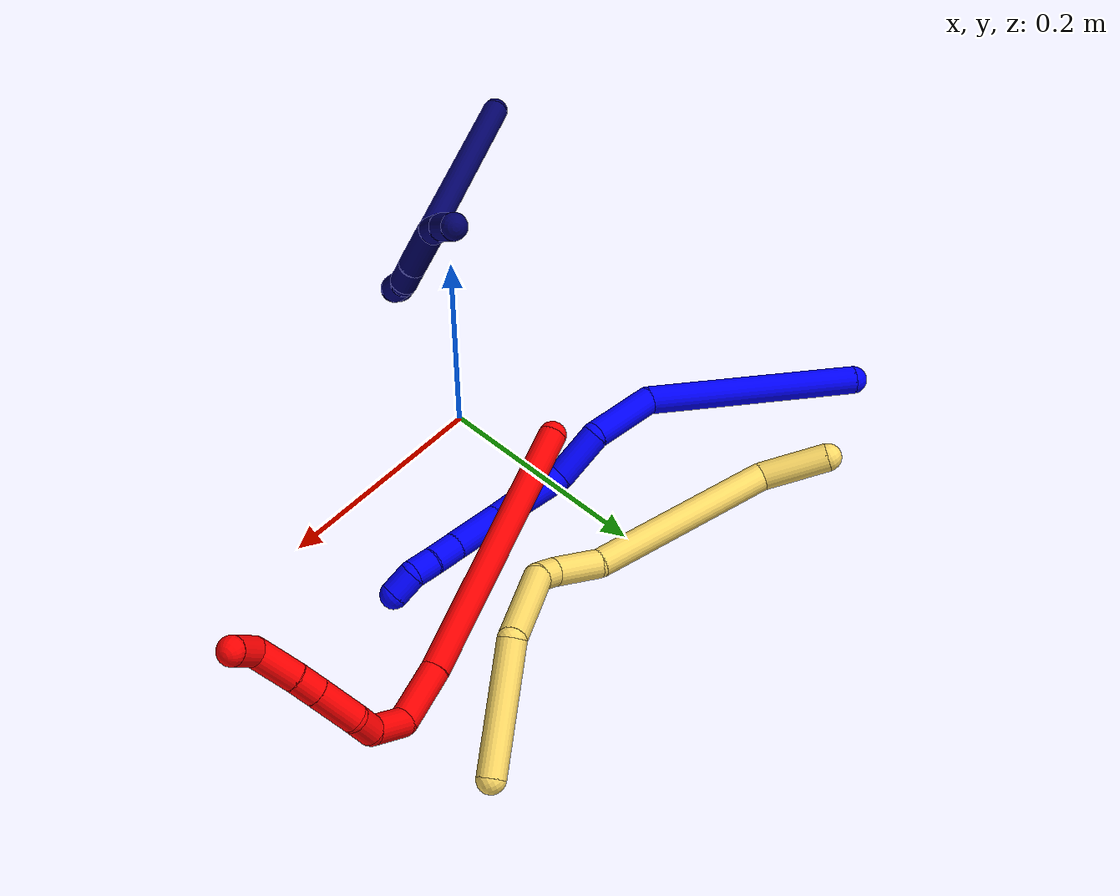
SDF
<sdf version="1.7">
 <world name="default">
  <model name="1">
   <static>0</static>
   <link name="1">
    <collision name="collision-cylinder-e_1_1_4">
     <pose>0.086271 0.005721 -0.043493 -3.0108 1.10039 -2.92885</pose>
     <geometry><cylinder><radius>0.0125</radius><length>0.193567</length></cylinder></geometry>
     <surface>
      <friction><ode><mu>1.16</mu><mu2>1.16</mu2><slip1>0</slip1><slip2>0</slip2></ode></friction>
      <contact><ode><kp>1e+06</kp><kd>1</kd><max_vel>0</max_vel><min_depth>0.001</min_depth></ode></contact>
     </surface>
    </collision>
    <visual name="visual-cylinder-e_1_1_4">
     <pose>0.086271 0.005721 -0.043493 -3.0108 1.10039 -2.92885</pose>
     <geometry><cylinder><radius>0.0125</radius><length>0.193567</length></cylinder></geometry>
     <material><ambient>0 0 1 1</ambient></material>
    </visual>
    <collision name="collision-cylinder-e_2_4_5">
     <pose>0.205229 0.003794 -0.08635 1.48794 1.34016 1.26025</pose>
     <geometry><cylinder><radius>0.0125</radius><length>0.067152</length></cylinder></geometry>
     <surface>
      <friction><ode><mu>1.16</mu><mu2>1.16</mu2><slip1>0</slip1><slip2>0</slip2></ode></friction>
      <contact><ode><kp>1e+06</kp><kd>1</kd><max_vel>0</max_vel><min_depth>0.001</min_depth></ode></contact>
     </surface>
    </collision>
    <visual name="visual-cylinder-e_2_4_5">
     <pose>0.205229 0.003794 -0.08635 1.48794 1.34016 1.26025</pose>
     <geometry><cylinder><radius>0.0125</radius><length>0.067152</length></cylinder></geometry>
     <material><ambient>0 0 1 1</ambient></material>
    </visual>
    <collision name="collision-cylinder-e_3_5_6">
     <pose>0.259807 0.003205 -0.079294 -0.832785 1.15969 -0.56387</pose>
     <geometry><cylinder><radius>0.0125</radius><length>0.047761</length></cylinder></geometry>
     <surface>
      <friction><ode><mu>1.16</mu><mu2>1.16</mu2><slip1>0</slip1><slip2>0</slip2></ode></friction>
      <contact><ode><kp>1e+06</kp><kd>1</kd><max_vel>0</max_vel><min_depth>0.001</min_depth></ode></contact>
     </surface>
    </collision>
    <visual name="visual-cylinder-e_3_5_6">
     <pose>0.259807 0.003205 -0.079294 -0.832785 1.15969 -0.56387</pose>
     <geometry><cylinder><radius>0.0125</radius><length>0.047761</length></cylinder></geometry>
     <material><ambient>0 0 1 1</ambient></material>
    </visual>
    <collision name="collision-cylinder-e_4_6_7">
     <pose>0.305501 0.010683 -0.07315 -2.15731 1.54974 -2.13966</pose>
     <geometry><cylinder><radius>0.0125</radius><length>0.047616</length></cylinder></geometry>
     <surface>
      <friction><ode><mu>1.16</mu><mu2>1.16</mu2><slip1>0</slip1><slip2>0</slip2></ode></friction>
      <contact><ode><kp>1e+06</kp><kd>1</kd><max_vel>0</max_vel><min_depth>0.001</min_depth></ode></contact>
     </surface>
    </collision>
    <visual name="visual-cylinder-e_4_6_7">
     <pose>0.305501 0.010683 -0.07315 -2.15731 1.54974 -2.13966</pose>
     <geometry><cylinder><radius>0.0125</radius><length>0.047616</length></cylinder></geometry>
     <material><ambient>0 0 1 1</ambient></material>
    </visual>
    <collision name="collision-cylinder-e_5_7_8">
     <pose>0.3406 0.009294 -0.072971 1.32283 1.40736 1.16748</pose>
     <geometry><cylinder><radius>0.0125</radius><length>0.022898</length></cylinder></geometry>
     <surface>
      <friction><ode><mu>1.16</mu><mu2>1.16</mu2><slip1>0</slip1><slip2>0</slip2></ode></friction>
      <contact><ode><kp>1e+06</kp><kd>1</kd><max_vel>0</max_vel><min_depth>0.001</min_depth></ode></contact>
     </surface>
    </collision>
    <visual name="visual-cylinder-e_5_7_8">
     <pose>0.3406 0.009294 -0.072971 1.32283 1.40736 1.16748</pose>
     <geometry><cylinder><radius>0.0125</radius><length>0.022898</length></cylinder></geometry>
     <material><ambient>0 0 1 1</ambient></material>
    </visual>
    <collision name="collision-cylinder-e_6_8_9">
     <pose>0.376205 0.001886 -0.07195 1.47064 1.34319 1.2467</pose>
     <geometry><cylinder><radius>0.0125</radius><length>0.049904</length></cylinder></geometry>
     <surface>
      <friction><ode><mu>1.16</mu><mu2>1.16</mu2><slip1>0</slip1><slip2>0</slip2></ode></friction>
      <contact><ode><kp>1e+06</kp><kd>1</kd><max_vel>0</max_vel><min_depth>0.001</min_depth></ode></contact>
     </surface>
    </collision>
    <visual name="visual-cylinder-e_6_8_9">
     <pose>0.376205 0.001886 -0.07195 1.47064 1.34319 1.2467</pose>
     <geometry><cylinder><radius>0.0125</radius><length>0.049904</length></cylinder></geometry>
     <material><ambient>0 0 1 1</ambient></material>
    </visual>
    <collision name="collision-cylinder-e_7_9_10">
     <pose>0.413148 -0.007413 -0.07106 1.48252 1.28509 1.20143</pose>
     <geometry><cylinder><radius>0.0125</radius><length>0.026336</length></cylinder></geometry>
     <surface>
      <friction><ode><mu>1.16</mu><mu2>1.16</mu2><slip1>0</slip1><slip2>0</slip2></ode></friction>
      <contact><ode><kp>1e+06</kp><kd>1</kd><max_vel>0</max_vel><min_depth>0.001</min_depth></ode></contact>
     </surface>
    </collision>
    <visual name="visual-cylinder-e_7_9_10">
     <pose>0.413148 -0.007413 -0.07106 1.48252 1.28509 1.20143</pose>
     <geometry><cylinder><radius>0.0125</radius><length>0.026336</length></cylinder></geometry>
     <material><ambient>0 0 1 1</ambient></material>
    </visual>
    <collision name="collision-cylinder-e_8_10_11">
     <pose>0.436399 -0.012842 -0.070745 1.57785 1.40908 1.41604</pose>
     <geometry><cylinder><radius>0.0125</radius><length>0.021515</length></cylinder></geometry>
     <surface>
      <friction><ode><mu>1.16</mu><mu2>1.16</mu2><slip1>0</slip1><slip2>0</slip2></ode></friction>
      <contact><ode><kp>1e+06</kp><kd>1</kd><max_vel>0</max_vel><min_depth>0.001</min_depth></ode></contact>
     </surface>
    </collision>
    <visual name="visual-cylinder-e_8_10_11">
     <pose>0.436399 -0.012842 -0.070745 1.57785 1.40908 1.41604</pose>
     <geometry><cylinder><radius>0.0125</radius><length>0.021515</length></cylinder></geometry>
     <material><ambient>0 0 1 1</ambient></material>
    </visual>
    <collision name="collision-cylinder-e_9_11_2">
     <pose>0.457691 -0.010892 -0.067992 -0.92659 1.16351 -0.634878</pose>
     <geometry><cylinder><radius>0.0125</radius><length>0.02325</length></cylinder></geometry>
     <surface>
      <friction><ode><mu>1.16</mu><mu2>1.16</mu2><slip1>0</slip1><slip2>0</slip2></ode></friction>
      <contact><ode><kp>1e+06</kp><kd>1</kd><max_vel>0</max_vel><min_depth>0.001</min_depth></ode></contact>
     </surface>
    </collision>
    <visual name="visual-cylinder-e_9_11_2">
     <pose>0.457691 -0.010892 -0.067992 -0.92659 1.16351 -0.634878</pose>
     <geometry><cylinder><radius>0.0125</radius><length>0.02325</length></cylinder></geometry>
     <material><ambient>0 0 1 1</ambient></material>
    </visual>
    <collision name="collision-sphere-2">
     <pose>0.468364 -0.00721 -0.065227 0 -0 0</pose>
     <geometry><sphere><radius>0.0125</radius></sphere></geometry>
     <surface>
      <friction><ode><mu>1.16</mu><mu2>1.16</mu2><slip1>0</slip1><slip2>0</slip2></ode></friction>
      <contact><ode><kp>1e+06</kp><kd>1</kd><max_vel>0</max_vel><min_depth>0.001</min_depth></ode></contact>
     </surface>
    </collision>
    <visual name="visual-sphere-2">
     <pose>0.468364 -0.00721 -0.065227 0 -0 0</pose>
     <geometry><sphere><radius>0.0125</radius></sphere></geometry>
     <material><ambient>0 0 1 1</ambient></material>
    </visual>
    <collision name="collision-sphere-11">
     <pose>0.447017 -0.014574 -0.070758 0 -0 0</pose>
     <geometry><sphere><radius>0.0125</radius></sphere></geometry>
     <surface>
      <friction><ode><mu>1.16</mu><mu2>1.16</mu2><slip1>0</slip1><slip2>0</slip2></ode></friction>
      <contact><ode><kp>1e+06</kp><kd>1</kd><max_vel>0</max_vel><min_depth>0.001</min_depth></ode></contact>
     </surface>
    </collision>
    <visual name="visual-sphere-11">
     <pose>0.447017 -0.014574 -0.070758 0 -0 0</pose>
     <geometry><sphere><radius>0.0125</radius></sphere></geometry>
     <material><ambient>0 0 1 1</ambient></material>
    </visual>
    <collision name="collision-sphere-10">
     <pose>0.425782 -0.01111 -0.070733 0 -0 0</pose>
     <geometry><sphere><radius>0.0125</radius></sphere></geometry>
     <surface>
      <friction><ode><mu>1.16</mu><mu2>1.16</mu2><slip1>0</slip1><slip2>0</slip2></ode></friction>
      <contact><ode><kp>1e+06</kp><kd>1</kd><max_vel>0</max_vel><min_depth>0.001</min_depth></ode></contact>
     </surface>
    </collision>
    <visual name="visual-sphere-10">
     <pose>0.425782 -0.01111 -0.070733 0 -0 0</pose>
     <geometry><sphere><radius>0.0125</radius></sphere></geometry>
     <material><ambient>0 0 1 1</ambient></material>
    </visual>
    <collision name="collision-sphere-9">
     <pose>0.400514 -0.003716 -0.071387 0 -0 0</pose>
     <geometry><sphere><radius>0.0125</radius></sphere></geometry>
     <surface>
      <friction><ode><mu>1.16</mu><mu2>1.16</mu2><slip1>0</slip1><slip2>0</slip2></ode></friction>
      <contact><ode><kp>1e+06</kp><kd>1</kd><max_vel>0</max_vel><min_depth>0.001</min_depth></ode></contact>
     </surface>
    </collision>
    <visual name="visual-sphere-9">
     <pose>0.400514 -0.003716 -0.071387 0 -0 0</pose>
     <geometry><sphere><radius>0.0125</radius></sphere></geometry>
     <material><ambient>0 0 1 1</ambient></material>
    </visual>
    <collision name="collision-sphere-4">
     <pose>0.172542 0.011443 -0.086985 0 -0 0</pose>
     <geometry><sphere><radius>0.0125</radius></sphere></geometry>
     <surface>
      <friction><ode><mu>1.16</mu><mu2>1.16</mu2><slip1>0</slip1><slip2>0</slip2></ode></friction>
      <contact><ode><kp>1e+06</kp><kd>1</kd><max_vel>0</max_vel><min_depth>0.001</min_depth></ode></contact>
     </surface>
    </collision>
    <visual name="visual-sphere-4">
     <pose>0.172542 0.011443 -0.086985 0 -0 0</pose>
     <geometry><sphere><radius>0.0125</radius></sphere></geometry>
     <material><ambient>0 0 1 1</ambient></material>
    </visual>
    <collision name="collision-sphere-1">
     <geometry><sphere><radius>0.0125</radius></sphere></geometry>
     <surface>
      <friction><ode><mu>1.16</mu><mu2>1.16</mu2><slip1>0</slip1><slip2>0</slip2></ode></friction>
      <contact><ode><kp>1e+06</kp><kd>1</kd><max_vel>0</max_vel><min_depth>0.001</min_depth></ode></contact>
     </surface>
    </collision>
    <visual name="visual-sphere-1">
     <geometry><sphere><radius>0.0125</radius></sphere></geometry>
     <material><ambient>0 0 1 1</ambient></material>
    </visual>
    <collision name="collision-sphere-8">
     <pose>0.351897 0.007488 -0.072513 0 -0 0</pose>
     <geometry><sphere><radius>0.0125</radius></sphere></geometry>
     <surface>
      <friction><ode><mu>1.16</mu><mu2>1.16</mu2><slip1>0</slip1><slip2>0</slip2></ode></friction>
      <contact><ode><kp>1e+06</kp><kd>1</kd><max_vel>0</max_vel><min_depth>0.001</min_depth></ode></contact>
     </surface>
    </collision>
    <visual name="visual-sphere-8">
     <pose>0.351897 0.007488 -0.072513 0 -0 0</pose>
     <geometry><sphere><radius>0.0125</radius></sphere></geometry>
     <material><ambient>0 0 1 1</ambient></material>
    </visual>
    <collision name="collision-sphere-5">
     <pose>0.237916 -0.003855 -0.085715 0 -0 0</pose>
     <geometry><sphere><radius>0.0125</radius></sphere></geometry>
     <surface>
      <friction><ode><mu>1.16</mu><mu2>1.16</mu2><slip1>0</slip1><slip2>0</slip2></ode></friction>
      <contact><ode><kp>1e+06</kp><kd>1</kd><max_vel>0</max_vel><min_depth>0.001</min_depth></ode></contact>
     </surface>
    </collision>
    <visual name="visual-sphere-5">
     <pose>0.237916 -0.003855 -0.085715 0 -0 0</pose>
     <geometry><sphere><radius>0.0125</radius></sphere></geometry>
     <material><ambient>0 0 1 1</ambient></material>
    </visual>
    <collision name="collision-sphere-6">
     <pose>0.281698 0.010265 -0.072873 0 -0 0</pose>
     <geometry><sphere><radius>0.0125</radius></sphere></geometry>
     <surface>
      <friction><ode><mu>1.16</mu><mu2>1.16</mu2><slip1>0</slip1><slip2>0</slip2></ode></friction>
      <contact><ode><kp>1e+06</kp><kd>1</kd><max_vel>0</max_vel><min_depth>0.001</min_depth></ode></contact>
     </surface>
    </collision>
    <visual name="visual-sphere-6">
     <pose>0.281698 0.010265 -0.072873 0 -0 0</pose>
     <geometry><sphere><radius>0.0125</radius></sphere></geometry>
     <material><ambient>0 0 1 1</ambient></material>
    </visual>
    <collision name="collision-sphere-7">
     <pose>0.329303 0.0111 -0.073428 0 -0 0</pose>
     <geometry><sphere><radius>0.0125</radius></sphere></geometry>
     <surface>
      <friction><ode><mu>1.16</mu><mu2>1.16</mu2><slip1>0</slip1><slip2>0</slip2></ode></friction>
      <contact><ode><kp>1e+06</kp><kd>1</kd><max_vel>0</max_vel><min_depth>0.001</min_depth></ode></contact>
     </surface>
    </collision>
    <visual name="visual-sphere-7">
     <pose>0.329303 0.0111 -0.073428 0 -0 0</pose>
     <geometry><sphere><radius>0.0125</radius></sphere></geometry>
     <material><ambient>0 0 1 1</ambient></material>
    </visual>
    <inertial>
     <pose>0.229841 0.003212 -0.063447 0 -0 0</pose>
     <mass>0.5</mass>
     <inertia>
      <ixx>-0.000279</ixx>
      <ixy>0</ixy>
      <ixz>0</ixz>
      <iyy>0.000623</iyy>
      <iyz>0</iyz>
      <izz>-0.000648</izz>
     </inertia>
    </inertial>
   </link>
   <pose>-0.267585 0.241477 0.013085 -2.08336 0.084647 -0.186113</pose>
  </model>
  <model name="2">
   <static>0</static>
   <link name="2">
    <collision name="collision-cylinder-e_1_1_4">
     <pose>0.054933 0.042106 0.104432 -0.38325 0.453889 -0.089541</pose>
     <geometry><cylinder><radius>0.0125</radius><length>0.250572</length></cylinder></geometry>
     <surface>
      <friction><ode><mu>1.16</mu><mu2>1.16</mu2><slip1>0</slip1><slip2>0</slip2></ode></friction>
      <contact><ode><kp>1e+06</kp><kd>1</kd><max_vel>0</max_vel><min_depth>0.001</min_depth></ode></contact>
     </surface>
    </collision>
    <visual name="visual-cylinder-e_1_1_4">
     <pose>0.054933 0.042106 0.104432 -0.38325 0.453889 -0.089541</pose>
     <geometry><cylinder><radius>0.0125</radius><length>0.250572</length></cylinder></geometry>
     <material><ambient>1 0 0 1</ambient></material>
    </visual>
    <collision name="collision-cylinder-e_2_4_5">
     <pose>0.121935 0.091105 0.23143 -0.296483 0.472783 -0.071918</pose>
     <geometry><cylinder><radius>0.0125</radius><length>0.053005</length></cylinder></geometry>
     <surface>
      <friction><ode><mu>1.16</mu><mu2>1.16</mu2><slip1>0</slip1><slip2>0</slip2></ode></friction>
      <contact><ode><kp>1e+06</kp><kd>1</kd><max_vel>0</max_vel><min_depth>0.001</min_depth></ode></contact>
     </surface>
    </collision>
    <visual name="visual-cylinder-e_2_4_5">
     <pose>0.121935 0.091105 0.23143 -0.296483 0.472783 -0.071918</pose>
     <geometry><cylinder><radius>0.0125</radius><length>0.053005</length></cylinder></geometry>
     <material><ambient>1 0 0 1</ambient></material>
    </visual>
    <collision name="collision-cylinder-e_3_5_6">
     <pose>0.134001 0.092144 0.272741 0.302701 -0.000133 -2e-05</pose>
     <geometry><cylinder><radius>0.0125</radius><length>0.039276</length></cylinder></geometry>
     <surface>
      <friction><ode><mu>1.16</mu><mu2>1.16</mu2><slip1>0</slip1><slip2>0</slip2></ode></friction>
      <contact><ode><kp>1e+06</kp><kd>1</kd><max_vel>0</max_vel><min_depth>0.001</min_depth></ode></contact>
     </surface>
    </collision>
    <visual name="visual-cylinder-e_3_5_6">
     <pose>0.134001 0.092144 0.272741 0.302701 -0.000133 -2e-05</pose>
     <geometry><cylinder><radius>0.0125</radius><length>0.039276</length></cylinder></geometry>
     <material><ambient>1 0 0 1</ambient></material>
    </visual>
    <collision name="collision-cylinder-e_4_6_7">
     <pose>0.129575 0.078464 0.299457 0.77624 -0.377038 -0.155693</pose>
     <geometry><cylinder><radius>0.0125</radius><length>0.024029</length></cylinder></geometry>
     <surface>
      <friction><ode><mu>1.16</mu><mu2>1.16</mu2><slip1>0</slip1><slip2>0</slip2></ode></friction>
      <contact><ode><kp>1e+06</kp><kd>1</kd><max_vel>0</max_vel><min_depth>0.001</min_depth></ode></contact>
     </surface>
    </collision>
    <visual name="visual-cylinder-e_4_6_7">
     <pose>0.129575 0.078464 0.299457 0.77624 -0.377038 -0.155693</pose>
     <geometry><cylinder><radius>0.0125</radius><length>0.024029</length></cylinder></geometry>
     <material><ambient>1 0 0 1</ambient></material>
    </visual>
    <collision name="collision-cylinder-e_5_7_8">
     <pose>0.122263 0.052913 0.317471 1.05527 -0.140842 -0.082164</pose>
     <geometry><cylinder><radius>0.0125</radius><length>0.041152</length></cylinder></geometry>
     <surface>
      <friction><ode><mu>1.16</mu><mu2>1.16</mu2><slip1>0</slip1><slip2>0</slip2></ode></friction>
      <contact><ode><kp>1e+06</kp><kd>1</kd><max_vel>0</max_vel><min_depth>0.001</min_depth></ode></contact>
     </surface>
    </collision>
    <visual name="visual-cylinder-e_5_7_8">
     <pose>0.122263 0.052913 0.317471 1.05527 -0.140842 -0.082164</pose>
     <geometry><cylinder><radius>0.0125</radius><length>0.041152</length></cylinder></geometry>
     <material><ambient>1 0 0 1</ambient></material>
    </visual>
    <collision name="collision-cylinder-e_6_8_9">
     <pose>0.117909 0.025554 0.33297 1.05555 -0.131649 -0.076816</pose>
     <geometry><cylinder><radius>0.0125</radius><length>0.022337</length></cylinder></geometry>
     <surface>
      <friction><ode><mu>1.16</mu><mu2>1.16</mu2><slip1>0</slip1><slip2>0</slip2></ode></friction>
      <contact><ode><kp>1e+06</kp><kd>1</kd><max_vel>0</max_vel><min_depth>0.001</min_depth></ode></contact>
     </surface>
    </collision>
    <visual name="visual-cylinder-e_6_8_9">
     <pose>0.117909 0.025554 0.33297 1.05555 -0.131649 -0.076816</pose>
     <geometry><cylinder><radius>0.0125</radius><length>0.022337</length></cylinder></geometry>
     <material><ambient>1 0 0 1</ambient></material>
    </visual>
    <collision name="collision-cylinder-e_7_9_10">
     <pose>0.115233 -0.001687 0.347939 1.07544 -0.060384 -0.036016</pose>
     <geometry><cylinder><radius>0.0125</radius><length>0.040099</length></cylinder></geometry>
     <surface>
      <friction><ode><mu>1.16</mu><mu2>1.16</mu2><slip1>0</slip1><slip2>0</slip2></ode></friction>
      <contact><ode><kp>1e+06</kp><kd>1</kd><max_vel>0</max_vel><min_depth>0.001</min_depth></ode></contact>
     </surface>
    </collision>
    <visual name="visual-cylinder-e_7_9_10">
     <pose>0.115233 -0.001687 0.347939 1.07544 -0.060384 -0.036016</pose>
     <geometry><cylinder><radius>0.0125</radius><length>0.040099</length></cylinder></geometry>
     <material><ambient>1 0 0 1</ambient></material>
    </visual>
    <collision name="collision-cylinder-e_8_10_2">
     <pose>0.110493 -0.024093 0.370962 0.341258 -0.241392 -0.04179</pose>
     <geometry><cylinder><radius>0.0125</radius><length>0.02953</length></cylinder></geometry>
     <surface>
      <friction><ode><mu>1.16</mu><mu2>1.16</mu2><slip1>0</slip1><slip2>0</slip2></ode></friction>
      <contact><ode><kp>1e+06</kp><kd>1</kd><max_vel>0</max_vel><min_depth>0.001</min_depth></ode></contact>
     </surface>
    </collision>
    <visual name="visual-cylinder-e_8_10_2">
     <pose>0.110493 -0.024093 0.370962 0.341258 -0.241392 -0.04179</pose>
     <geometry><cylinder><radius>0.0125</radius><length>0.02953</length></cylinder></geometry>
     <material><ambient>1 0 0 1</ambient></material>
    </visual>
    <collision name="collision-sphere-2">
     <pose>0.106963 -0.028891 0.384472 0 -0 0</pose>
     <geometry><sphere><radius>0.0125</radius></sphere></geometry>
     <surface>
      <friction><ode><mu>1.16</mu><mu2>1.16</mu2><slip1>0</slip1><slip2>0</slip2></ode></friction>
      <contact><ode><kp>1e+06</kp><kd>1</kd><max_vel>0</max_vel><min_depth>0.001</min_depth></ode></contact>
     </surface>
    </collision>
    <visual name="visual-sphere-2">
     <pose>0.106963 -0.028891 0.384472 0 -0 0</pose>
     <geometry><sphere><radius>0.0125</radius></sphere></geometry>
     <material><ambient>1 0 0 1</ambient></material>
    </visual>
    <collision name="collision-sphere-10">
     <pose>0.114023 -0.019295 0.357452 0 -0 0</pose>
     <geometry><sphere><radius>0.0125</radius></sphere></geometry>
     <surface>
      <friction><ode><mu>1.16</mu><mu2>1.16</mu2><slip1>0</slip1><slip2>0</slip2></ode></friction>
      <contact><ode><kp>1e+06</kp><kd>1</kd><max_vel>0</max_vel><min_depth>0.001</min_depth></ode></contact>
     </surface>
    </collision>
    <visual name="visual-sphere-10">
     <pose>0.114023 -0.019295 0.357452 0 -0 0</pose>
     <geometry><sphere><radius>0.0125</radius></sphere></geometry>
     <material><ambient>1 0 0 1</ambient></material>
    </visual>
    <collision name="collision-sphere-9">
     <pose>0.116443 0.01592 0.338426 0 -0 0</pose>
     <geometry><sphere><radius>0.0125</radius></sphere></geometry>
     <surface>
      <friction><ode><mu>1.16</mu><mu2>1.16</mu2><slip1>0</slip1><slip2>0</slip2></ode></friction>
      <contact><ode><kp>1e+06</kp><kd>1</kd><max_vel>0</max_vel><min_depth>0.001</min_depth></ode></contact>
     </surface>
    </collision>
    <visual name="visual-sphere-9">
     <pose>0.116443 0.01592 0.338426 0 -0 0</pose>
     <geometry><sphere><radius>0.0125</radius></sphere></geometry>
     <material><ambient>1 0 0 1</ambient></material>
    </visual>
    <collision name="collision-sphere-4">
     <pose>0.109867 0.084211 0.208864 0 -0 0</pose>
     <geometry><sphere><radius>0.0125</radius></sphere></geometry>
     <surface>
      <friction><ode><mu>1.16</mu><mu2>1.16</mu2><slip1>0</slip1><slip2>0</slip2></ode></friction>
      <contact><ode><kp>1e+06</kp><kd>1</kd><max_vel>0</max_vel><min_depth>0.001</min_depth></ode></contact>
     </surface>
    </collision>
    <visual name="visual-sphere-4">
     <pose>0.109867 0.084211 0.208864 0 -0 0</pose>
     <geometry><sphere><radius>0.0125</radius></sphere></geometry>
     <material><ambient>1 0 0 1</ambient></material>
    </visual>
    <collision name="collision-sphere-1">
     <geometry><sphere><radius>0.0125</radius></sphere></geometry>
     <surface>
      <friction><ode><mu>1.16</mu><mu2>1.16</mu2><slip1>0</slip1><slip2>0</slip2></ode></friction>
      <contact><ode><kp>1e+06</kp><kd>1</kd><max_vel>0</max_vel><min_depth>0.001</min_depth></ode></contact>
     </surface>
    </collision>
    <visual name="visual-sphere-1">
     <geometry><sphere><radius>0.0125</radius></sphere></geometry>
     <material><ambient>1 0 0 1</ambient></material>
    </visual>
    <collision name="collision-sphere-8">
     <pose>0.119375 0.035189 0.327515 0 -0 0</pose>
     <geometry><sphere><radius>0.0125</radius></sphere></geometry>
     <surface>
      <friction><ode><mu>1.16</mu><mu2>1.16</mu2><slip1>0</slip1><slip2>0</slip2></ode></friction>
      <contact><ode><kp>1e+06</kp><kd>1</kd><max_vel>0</max_vel><min_depth>0.001</min_depth></ode></contact>
     </surface>
    </collision>
    <visual name="visual-sphere-8">
     <pose>0.119375 0.035189 0.327515 0 -0 0</pose>
     <geometry><sphere><radius>0.0125</radius></sphere></geometry>
     <material><ambient>1 0 0 1</ambient></material>
    </visual>
    <collision name="collision-sphere-5">
     <pose>0.134003 0.097998 0.253996 0 -0 0</pose>
     <geometry><sphere><radius>0.0125</radius></sphere></geometry>
     <surface>
      <friction><ode><mu>1.16</mu><mu2>1.16</mu2><slip1>0</slip1><slip2>0</slip2></ode></friction>
      <contact><ode><kp>1e+06</kp><kd>1</kd><max_vel>0</max_vel><min_depth>0.001</min_depth></ode></contact>
     </surface>
    </collision>
    <visual name="visual-sphere-5">
     <pose>0.134003 0.097998 0.253996 0 -0 0</pose>
     <geometry><sphere><radius>0.0125</radius></sphere></geometry>
     <material><ambient>1 0 0 1</ambient></material>
    </visual>
    <collision name="collision-sphere-6">
     <pose>0.133998 0.08629 0.291486 0 -0 0</pose>
     <geometry><sphere><radius>0.0125</radius></sphere></geometry>
     <surface>
      <friction><ode><mu>1.16</mu><mu2>1.16</mu2><slip1>0</slip1><slip2>0</slip2></ode></friction>
      <contact><ode><kp>1e+06</kp><kd>1</kd><max_vel>0</max_vel><min_depth>0.001</min_depth></ode></contact>
     </surface>
    </collision>
    <visual name="visual-sphere-6">
     <pose>0.133998 0.08629 0.291486 0 -0 0</pose>
     <geometry><sphere><radius>0.0125</radius></sphere></geometry>
     <material><ambient>1 0 0 1</ambient></material>
    </visual>
    <collision name="collision-sphere-7">
     <pose>0.125152 0.070638 0.307428 0 -0 0</pose>
     <geometry><sphere><radius>0.0125</radius></sphere></geometry>
     <surface>
      <friction><ode><mu>1.16</mu><mu2>1.16</mu2><slip1>0</slip1><slip2>0</slip2></ode></friction>
      <contact><ode><kp>1e+06</kp><kd>1</kd><max_vel>0</max_vel><min_depth>0.001</min_depth></ode></contact>
     </surface>
    </collision>
    <visual name="visual-sphere-7">
     <pose>0.125152 0.070638 0.307428 0 -0 0</pose>
     <geometry><sphere><radius>0.0125</radius></sphere></geometry>
     <material><ambient>1 0 0 1</ambient></material>
    </visual>
    <inertial>
     <pose>0.088306 0.045706 0.203502 0 -0 0</pose>
     <mass>0.5</mass>
     <inertia>
      <ixx>0.001123</ixx>
      <ixy>0</ixy>
      <ixz>0</ixz>
      <iyy>0.001162</iyy>
      <iyz>0</iyz>
      <izz>-0.000982</izz>
     </inertia>
    </inertial>
   </link>
   <pose>-0.016527 0.099616 0.042227 -0.761967 0.88818 -0.623274</pose>
  </model>
  <model name="5">
   <static>0</static>
   <link name="5">
    <collision name="collision-cylinder-e_1_1_4">
     <pose>-0.009409 -0.002939 -0.029082 3.04089 -0.311415 -2.52032</pose>
     <geometry><cylinder><radius>0.0125</radius><length>0.061414</length></cylinder></geometry>
     <surface>
      <friction><ode><mu>1.16</mu><mu2>1.16</mu2><slip1>0</slip1><slip2>0</slip2></ode></friction>
      <contact><ode><kp>1e+06</kp><kd>1</kd><max_vel>0</max_vel><min_depth>0.001</min_depth></ode></contact>
     </surface>
    </collision>
    <visual name="visual-cylinder-e_1_1_4">
     <pose>-0.009409 -0.002939 -0.029082 3.04089 -0.311415 -2.52032</pose>
     <geometry><cylinder><radius>0.0125</radius><length>0.061414</length></cylinder></geometry>
     <material><ambient>1 0.858824 0.4 1</ambient></material>
    </visual>
    <collision name="collision-cylinder-e_2_4_5">
     <pose>0.002079 -0.017092 -0.143397 3.01077 0.238455 2.14081</pose>
     <geometry><cylinder><radius>0.0125</radius><length>0.176942</length></cylinder></geometry>
     <surface>
      <friction><ode><mu>1.16</mu><mu2>1.16</mu2><slip1>0</slip1><slip2>0</slip2></ode></friction>
      <contact><ode><kp>1e+06</kp><kd>1</kd><max_vel>0</max_vel><min_depth>0.001</min_depth></ode></contact>
     </surface>
    </collision>
    <visual name="visual-cylinder-e_2_4_5">
     <pose>0.002079 -0.017092 -0.143397 3.01077 0.238455 2.14081</pose>
     <geometry><cylinder><radius>0.0125</radius><length>0.176942</length></cylinder></geometry>
     <material><ambient>1 0.858824 0.4 1</ambient></material>
    </visual>
    <collision name="collision-cylinder-e_3_5_6">
     <pose>0.023415 -0.035378 -0.248117 2.79348 0.021164 0.120222</pose>
     <geometry><cylinder><radius>0.0125</radius><length>0.04147</length></cylinder></geometry>
     <surface>
      <friction><ode><mu>1.16</mu><mu2>1.16</mu2><slip1>0</slip1><slip2>0</slip2></ode></friction>
      <contact><ode><kp>1e+06</kp><kd>1</kd><max_vel>0</max_vel><min_depth>0.001</min_depth></ode></contact>
     </surface>
    </collision>
    <visual name="visual-cylinder-e_3_5_6">
     <pose>0.023415 -0.035378 -0.248117 2.79348 0.021164 0.120222</pose>
     <geometry><cylinder><radius>0.0125</radius><length>0.04147</length></cylinder></geometry>
     <material><ambient>1 0.858824 0.4 1</ambient></material>
    </visual>
    <collision name="collision-cylinder-e_4_6_7">
     <pose>0.029458 -0.046595 -0.27557 2.66174 0.557935 1.72789</pose>
     <geometry><cylinder><radius>0.0125</radius><length>0.021171</length></cylinder></geometry>
     <surface>
      <friction><ode><mu>1.16</mu><mu2>1.16</mu2><slip1>0</slip1><slip2>0</slip2></ode></friction>
      <contact><ode><kp>1e+06</kp><kd>1</kd><max_vel>0</max_vel><min_depth>0.001</min_depth></ode></contact>
     </surface>
    </collision>
    <visual name="visual-cylinder-e_4_6_7">
     <pose>0.029458 -0.046595 -0.27557 2.66174 0.557935 1.72789</pose>
     <geometry><cylinder><radius>0.0125</radius><length>0.021171</length></cylinder></geometry>
     <material><ambient>1 0.858824 0.4 1</ambient></material>
    </visual>
    <collision name="collision-cylinder-e_5_7_8">
     <pose>0.069945 -0.048773 -0.308585 -3.06319 0.946573 -2.98872</pose>
     <geometry><cylinder><radius>0.0125</radius><length>0.085979</length></cylinder></geometry>
     <surface>
      <friction><ode><mu>1.16</mu><mu2>1.16</mu2><slip1>0</slip1><slip2>0</slip2></ode></friction>
      <contact><ode><kp>1e+06</kp><kd>1</kd><max_vel>0</max_vel><min_depth>0.001</min_depth></ode></contact>
     </surface>
    </collision>
    <visual name="visual-cylinder-e_5_7_8">
     <pose>0.069945 -0.048773 -0.308585 -3.06319 0.946573 -2.98872</pose>
     <geometry><cylinder><radius>0.0125</radius><length>0.085979</length></cylinder></geometry>
     <material><ambient>1 0.858824 0.4 1</ambient></material>
    </visual>
    <collision name="collision-cylinder-e_6_8_2">
     <pose>0.127899 -0.008466 -0.368151 -2.30379 0.420539 -0.893949</pose>
     <geometry><cylinder><radius>0.0125</radius><length>0.113024</length></cylinder></geometry>
     <surface>
      <friction><ode><mu>1.16</mu><mu2>1.16</mu2><slip1>0</slip1><slip2>0</slip2></ode></friction>
      <contact><ode><kp>1e+06</kp><kd>1</kd><max_vel>0</max_vel><min_depth>0.001</min_depth></ode></contact>
     </surface>
    </collision>
    <visual name="visual-cylinder-e_6_8_2">
     <pose>0.127899 -0.008466 -0.368151 -2.30379 0.420539 -0.893949</pose>
     <geometry><cylinder><radius>0.0125</radius><length>0.113024</length></cylinder></geometry>
     <material><ambient>1 0.858824 0.4 1</ambient></material>
    </visual>
    <collision name="collision-sphere-2">
     <pose>0.15097 0.029873 -0.402668 0 -0 0</pose>
     <geometry><sphere><radius>0.0125</radius></sphere></geometry>
     <surface>
      <friction><ode><mu>1.16</mu><mu2>1.16</mu2><slip1>0</slip1><slip2>0</slip2></ode></friction>
      <contact><ode><kp>1e+06</kp><kd>1</kd><max_vel>0</max_vel><min_depth>0.001</min_depth></ode></contact>
     </surface>
    </collision>
    <visual name="visual-sphere-2">
     <pose>0.15097 0.029873 -0.402668 0 -0 0</pose>
     <geometry><sphere><radius>0.0125</radius></sphere></geometry>
     <material><ambient>1 0.858824 0.4 1</ambient></material>
    </visual>
    <collision name="collision-sphere-4">
     <pose>-0.018818 -0.005877 -0.058164 0 -0 0</pose>
     <geometry><sphere><radius>0.0125</radius></sphere></geometry>
     <surface>
      <friction><ode><mu>1.16</mu><mu2>1.16</mu2><slip1>0</slip1><slip2>0</slip2></ode></friction>
      <contact><ode><kp>1e+06</kp><kd>1</kd><max_vel>0</max_vel><min_depth>0.001</min_depth></ode></contact>
     </surface>
    </collision>
    <visual name="visual-sphere-4">
     <pose>-0.018818 -0.005877 -0.058164 0 -0 0</pose>
     <geometry><sphere><radius>0.0125</radius></sphere></geometry>
     <material><ambient>1 0.858824 0.4 1</ambient></material>
    </visual>
    <collision name="collision-sphere-1">
     <geometry><sphere><radius>0.0125</radius></sphere></geometry>
     <surface>
      <friction><ode><mu>1.16</mu><mu2>1.16</mu2><slip1>0</slip1><slip2>0</slip2></ode></friction>
      <contact><ode><kp>1e+06</kp><kd>1</kd><max_vel>0</max_vel><min_depth>0.001</min_depth></ode></contact>
     </surface>
    </collision>
    <visual name="visual-sphere-1">
     <geometry><sphere><radius>0.0125</radius></sphere></geometry>
     <material><ambient>1 0.858824 0.4 1</ambient></material>
    </visual>
    <collision name="collision-sphere-8">
     <pose>0.104828 -0.046805 -0.333633 0 -0 0</pose>
     <geometry><sphere><radius>0.0125</radius></sphere></geometry>
     <surface>
      <friction><ode><mu>1.16</mu><mu2>1.16</mu2><slip1>0</slip1><slip2>0</slip2></ode></friction>
      <contact><ode><kp>1e+06</kp><kd>1</kd><max_vel>0</max_vel><min_depth>0.001</min_depth></ode></contact>
     </surface>
    </collision>
    <visual name="visual-sphere-8">
     <pose>0.104828 -0.046805 -0.333633 0 -0 0</pose>
     <geometry><sphere><radius>0.0125</radius></sphere></geometry>
     <material><ambient>1 0.858824 0.4 1</ambient></material>
    </visual>
    <collision name="collision-sphere-5">
     <pose>0.022976 -0.028306 -0.22863 0 -0 0</pose>
     <geometry><sphere><radius>0.0125</radius></sphere></geometry>
     <surface>
      <friction><ode><mu>1.16</mu><mu2>1.16</mu2><slip1>0</slip1><slip2>0</slip2></ode></friction>
      <contact><ode><kp>1e+06</kp><kd>1</kd><max_vel>0</max_vel><min_depth>0.001</min_depth></ode></contact>
     </surface>
    </collision>
    <visual name="visual-sphere-5">
     <pose>0.022976 -0.028306 -0.22863 0 -0 0</pose>
     <geometry><sphere><radius>0.0125</radius></sphere></geometry>
     <material><ambient>1 0.858824 0.4 1</ambient></material>
    </visual>
    <collision name="collision-sphere-6">
     <pose>0.023854 -0.042449 -0.267604 0 -0 0</pose>
     <geometry><sphere><radius>0.0125</radius></sphere></geometry>
     <surface>
      <friction><ode><mu>1.16</mu><mu2>1.16</mu2><slip1>0</slip1><slip2>0</slip2></ode></friction>
      <contact><ode><kp>1e+06</kp><kd>1</kd><max_vel>0</max_vel><min_depth>0.001</min_depth></ode></contact>
     </surface>
    </collision>
    <visual name="visual-sphere-6">
     <pose>0.023854 -0.042449 -0.267604 0 -0 0</pose>
     <geometry><sphere><radius>0.0125</radius></sphere></geometry>
     <material><ambient>1 0.858824 0.4 1</ambient></material>
    </visual>
    <collision name="collision-sphere-7">
     <pose>0.035063 -0.050741 -0.283536 0 -0 0</pose>
     <geometry><sphere><radius>0.0125</radius></sphere></geometry>
     <surface>
      <friction><ode><mu>1.16</mu><mu2>1.16</mu2><slip1>0</slip1><slip2>0</slip2></ode></friction>
      <contact><ode><kp>1e+06</kp><kd>1</kd><max_vel>0</max_vel><min_depth>0.001</min_depth></ode></contact>
     </surface>
    </collision>
    <visual name="visual-sphere-7">
     <pose>0.035063 -0.050741 -0.283536 0 -0 0</pose>
     <geometry><sphere><radius>0.0125</radius></sphere></geometry>
     <material><ambient>1 0.858824 0.4 1</ambient></material>
    </visual>
    <inertial>
     <pose>0.043709 -0.021617 -0.222848 0 -0 0</pose>
     <mass>0.5</mass>
     <inertia>
      <ixx>7.5e-05</ixx>
      <ixy>0</ixy>
      <ixz>0</ixz>
      <iyy>0.00059</iyy>
      <iyz>0</iyz>
      <izz>-0.000256</izz>
     </inertia>
    </inertial>
   </link>
   <pose>-0.170842 0.286939 0.026425 -1.36807 -0.551206 1.12498</pose>
  </model>
  <model name="7">
   <static>0</static>
   <link name="7">
    <collision name="collision-cylinder-e_1_1_4">
     <pose>0.074925 0.076713 -0.10919 -2.52915 0.511605 -1.3822</pose>
     <geometry><cylinder><radius>0.0125</radius><length>0.306079</length></cylinder></geometry>
     <surface>
      <friction><ode><mu>1.16</mu><mu2>1.16</mu2><slip1>0</slip1><slip2>0</slip2></ode></friction>
      <contact><ode><kp>1e+06</kp><kd>1</kd><max_vel>0</max_vel><min_depth>0.001</min_depth></ode></contact>
     </surface>
    </collision>
    <visual name="visual-cylinder-e_1_1_4">
     <pose>0.074925 0.076713 -0.10919 -2.52915 0.511605 -1.3822</pose>
     <geometry><cylinder><radius>0.0125</radius><length>0.306079</length></cylinder></geometry>
     <material><ambient>0.003922 0 0.403922 1</ambient></material>
    </visual>
    <collision name="collision-cylinder-e_2_4_5">
     <pose>0.147522 0.160384 -0.240169 -2.83253 -0.101399 0.629815</pose>
     <geometry><cylinder><radius>0.0125</radius><length>0.045982</length></cylinder></geometry>
     <surface>
      <friction><ode><mu>1.16</mu><mu2>1.16</mu2><slip1>0</slip1><slip2>0</slip2></ode></friction>
      <contact><ode><kp>1e+06</kp><kd>1</kd><max_vel>0</max_vel><min_depth>0.001</min_depth></ode></contact>
     </surface>
    </collision>
    <visual name="visual-cylinder-e_2_4_5">
     <pose>0.147522 0.160384 -0.240169 -2.83253 -0.101399 0.629815</pose>
     <geometry><cylinder><radius>0.0125</radius><length>0.045982</length></cylinder></geometry>
     <material><ambient>0.003922 0 0.403922 1</ambient></material>
    </visual>
    <collision name="collision-cylinder-e_3_5_6">
     <pose>0.141413 0.166186 -0.276271 3.06101 -0.257503 -2.53788</pose>
     <geometry><cylinder><radius>0.0125</radius><length>0.029697</length></cylinder></geometry>
     <surface>
      <friction><ode><mu>1.16</mu><mu2>1.16</mu2><slip1>0</slip1><slip2>0</slip2></ode></friction>
      <contact><ode><kp>1e+06</kp><kd>1</kd><max_vel>0</max_vel><min_depth>0.001</min_depth></ode></contact>
     </surface>
    </collision>
    <visual name="visual-cylinder-e_3_5_6">
     <pose>0.141413 0.166186 -0.276271 3.06101 -0.257503 -2.53788</pose>
     <geometry><cylinder><radius>0.0125</radius><length>0.029697</length></cylinder></geometry>
     <material><ambient>0.003922 0 0.403922 1</ambient></material>
    </visual>
    <collision name="collision-cylinder-e_4_6_7">
     <pose>0.129721 0.162756 -0.299517 2.89233 -0.709245 -2.48908</pose>
     <geometry><cylinder><radius>0.0125</radius><length>0.024296</length></cylinder></geometry>
     <surface>
      <friction><ode><mu>1.16</mu><mu2>1.16</mu2><slip1>0</slip1><slip2>0</slip2></ode></friction>
      <contact><ode><kp>1e+06</kp><kd>1</kd><max_vel>0</max_vel><min_depth>0.001</min_depth></ode></contact>
     </surface>
    </collision>
    <visual name="visual-cylinder-e_4_6_7">
     <pose>0.129721 0.162756 -0.299517 2.89233 -0.709245 -2.48908</pose>
     <geometry><cylinder><radius>0.0125</radius><length>0.024296</length></cylinder></geometry>
     <material><ambient>0.003922 0 0.403922 1</ambient></material>
    </visual>
    <collision name="collision-cylinder-e_5_7_8">
     <pose>0.10537 0.154872 -0.325867 2.83004 -0.731939 -2.36373</pose>
     <geometry><cylinder><radius>0.0125</radius><length>0.049196</length></cylinder></geometry>
     <surface>
      <friction><ode><mu>1.16</mu><mu2>1.16</mu2><slip1>0</slip1><slip2>0</slip2></ode></friction>
      <contact><ode><kp>1e+06</kp><kd>1</kd><max_vel>0</max_vel><min_depth>0.001</min_depth></ode></contact>
     </surface>
    </collision>
    <visual name="visual-cylinder-e_5_7_8">
     <pose>0.10537 0.154872 -0.325867 2.83004 -0.731939 -2.36373</pose>
     <geometry><cylinder><radius>0.0125</radius><length>0.049196</length></cylinder></geometry>
     <material><ambient>0.003922 0 0.403922 1</ambient></material>
    </visual>
    <collision name="collision-cylinder-e_6_8_9">
     <pose>0.086639 0.146968 -0.353453 2.91955 -0.216382 -1.54477</pose>
     <geometry><cylinder><radius>0.0125</radius><length>0.021347</length></cylinder></geometry>
     <surface>
      <friction><ode><mu>1.16</mu><mu2>1.16</mu2><slip1>0</slip1><slip2>0</slip2></ode></friction>
      <contact><ode><kp>1e+06</kp><kd>1</kd><max_vel>0</max_vel><min_depth>0.001</min_depth></ode></contact>
     </surface>
    </collision>
    <visual name="visual-cylinder-e_6_8_9">
     <pose>0.086639 0.146968 -0.353453 2.91955 -0.216382 -1.54477</pose>
     <geometry><cylinder><radius>0.0125</radius><length>0.021347</length></cylinder></geometry>
     <material><ambient>0.003922 0 0.403922 1</ambient></material>
    </visual>
    <collision name="collision-cylinder-e_7_9_2">
     <pose>0.083515 0.142074 -0.375001 2.91711 -0.07121 -0.612169</pose>
     <geometry><cylinder><radius>0.0125</radius><length>0.023403</length></cylinder></geometry>
     <surface>
      <friction><ode><mu>1.16</mu><mu2>1.16</mu2><slip1>0</slip1><slip2>0</slip2></ode></friction>
      <contact><ode><kp>1e+06</kp><kd>1</kd><max_vel>0</max_vel><min_depth>0.001</min_depth></ode></contact>
     </surface>
    </collision>
    <visual name="visual-cylinder-e_7_9_2">
     <pose>0.083515 0.142074 -0.375001 2.91711 -0.07121 -0.612169</pose>
     <geometry><cylinder><radius>0.0125</radius><length>0.023403</length></cylinder></geometry>
     <material><ambient>0.003922 0 0.403922 1</ambient></material>
    </visual>
    <collision name="collision-sphere-2">
     <pose>0.082683 0.139475 -0.38638 0 -0 0</pose>
     <geometry><sphere><radius>0.0125</radius></sphere></geometry>
     <surface>
      <friction><ode><mu>1.16</mu><mu2>1.16</mu2><slip1>0</slip1><slip2>0</slip2></ode></friction>
      <contact><ode><kp>1e+06</kp><kd>1</kd><max_vel>0</max_vel><min_depth>0.001</min_depth></ode></contact>
     </surface>
    </collision>
    <visual name="visual-sphere-2">
     <pose>0.082683 0.139475 -0.38638 0 -0 0</pose>
     <geometry><sphere><radius>0.0125</radius></sphere></geometry>
     <material><ambient>0.003922 0 0.403922 1</ambient></material>
    </visual>
    <collision name="collision-sphere-9">
     <pose>0.084348 0.144672 -0.363621 0 -0 0</pose>
     <geometry><sphere><radius>0.0125</radius></sphere></geometry>
     <surface>
      <friction><ode><mu>1.16</mu><mu2>1.16</mu2><slip1>0</slip1><slip2>0</slip2></ode></friction>
      <contact><ode><kp>1e+06</kp><kd>1</kd><max_vel>0</max_vel><min_depth>0.001</min_depth></ode></contact>
     </surface>
    </collision>
    <visual name="visual-sphere-9">
     <pose>0.084348 0.144672 -0.363621 0 -0 0</pose>
     <geometry><sphere><radius>0.0125</radius></sphere></geometry>
     <material><ambient>0.003922 0 0.403922 1</ambient></material>
    </visual>
    <collision name="collision-sphere-4">
     <pose>0.149849 0.153427 -0.21838 0 -0 0</pose>
     <geometry><sphere><radius>0.0125</radius></sphere></geometry>
     <surface>
      <friction><ode><mu>1.16</mu><mu2>1.16</mu2><slip1>0</slip1><slip2>0</slip2></ode></friction>
      <contact><ode><kp>1e+06</kp><kd>1</kd><max_vel>0</max_vel><min_depth>0.001</min_depth></ode></contact>
     </surface>
    </collision>
    <visual name="visual-sphere-4">
     <pose>0.149849 0.153427 -0.21838 0 -0 0</pose>
     <geometry><sphere><radius>0.0125</radius></sphere></geometry>
     <material><ambient>0.003922 0 0.403922 1</ambient></material>
    </visual>
    <collision name="collision-sphere-1">
     <geometry><sphere><radius>0.0125</radius></sphere></geometry>
     <surface>
      <friction><ode><mu>1.16</mu><mu2>1.16</mu2><slip1>0</slip1><slip2>0</slip2></ode></friction>
      <contact><ode><kp>1e+06</kp><kd>1</kd><max_vel>0</max_vel><min_depth>0.001</min_depth></ode></contact>
     </surface>
    </collision>
    <visual name="visual-sphere-1">
     <geometry><sphere><radius>0.0125</radius></sphere></geometry>
     <material><ambient>0.003922 0 0.403922 1</ambient></material>
    </visual>
    <collision name="collision-sphere-8">
     <pose>0.088931 0.149263 -0.343284 0 -0 0</pose>
     <geometry><sphere><radius>0.0125</radius></sphere></geometry>
     <surface>
      <friction><ode><mu>1.16</mu><mu2>1.16</mu2><slip1>0</slip1><slip2>0</slip2></ode></friction>
      <contact><ode><kp>1e+06</kp><kd>1</kd><max_vel>0</max_vel><min_depth>0.001</min_depth></ode></contact>
     </surface>
    </collision>
    <visual name="visual-sphere-8">
     <pose>0.088931 0.149263 -0.343284 0 -0 0</pose>
     <geometry><sphere><radius>0.0125</radius></sphere></geometry>
     <material><ambient>0.003922 0 0.403922 1</ambient></material>
    </visual>
    <collision name="collision-sphere-5">
     <pose>0.145195 0.167341 -0.261959 0 -0 0</pose>
     <geometry><sphere><radius>0.0125</radius></sphere></geometry>
     <surface>
      <friction><ode><mu>1.16</mu><mu2>1.16</mu2><slip1>0</slip1><slip2>0</slip2></ode></friction>
      <contact><ode><kp>1e+06</kp><kd>1</kd><max_vel>0</max_vel><min_depth>0.001</min_depth></ode></contact>
     </surface>
    </collision>
    <visual name="visual-sphere-5">
     <pose>0.145195 0.167341 -0.261959 0 -0 0</pose>
     <geometry><sphere><radius>0.0125</radius></sphere></geometry>
     <material><ambient>0.003922 0 0.403922 1</ambient></material>
    </visual>
    <collision name="collision-sphere-6">
     <pose>0.137632 0.16503 -0.290583 0 -0 0</pose>
     <geometry><sphere><radius>0.0125</radius></sphere></geometry>
     <surface>
      <friction><ode><mu>1.16</mu><mu2>1.16</mu2><slip1>0</slip1><slip2>0</slip2></ode></friction>
      <contact><ode><kp>1e+06</kp><kd>1</kd><max_vel>0</max_vel><min_depth>0.001</min_depth></ode></contact>
     </surface>
    </collision>
    <visual name="visual-sphere-6">
     <pose>0.137632 0.16503 -0.290583 0 -0 0</pose>
     <geometry><sphere><radius>0.0125</radius></sphere></geometry>
     <material><ambient>0.003922 0 0.403922 1</ambient></material>
    </visual>
    <collision name="collision-sphere-7">
     <pose>0.121809 0.160482 -0.30845 0 -0 0</pose>
     <geometry><sphere><radius>0.0125</radius></sphere></geometry>
     <surface>
      <friction><ode><mu>1.16</mu><mu2>1.16</mu2><slip1>0</slip1><slip2>0</slip2></ode></friction>
      <contact><ode><kp>1e+06</kp><kd>1</kd><max_vel>0</max_vel><min_depth>0.001</min_depth></ode></contact>
     </surface>
    </collision>
    <visual name="visual-sphere-7">
     <pose>0.121809 0.160482 -0.30845 0 -0 0</pose>
     <geometry><sphere><radius>0.0125</radius></sphere></geometry>
     <material><ambient>0.003922 0 0.403922 1</ambient></material>
    </visual>
    <inertial>
     <pose>0.09211 0.107652 -0.184597 0 -0 0</pose>
     <mass>0.5</mass>
     <inertia>
      <ixx>-0.001664</ixx>
      <ixy>0</ixy>
      <ixz>0</ixz>
      <iyy>-0.001751</iyy>
      <iyz>0</iyz>
      <izz>-0.002397</izz>
     </inertia>
    </inertial>
   </link>
   <pose>-0.310398 -0.250274 0.012503 2.90557 0.864488 0.801404</pose>
  </model>
 </world>
</sdf>
